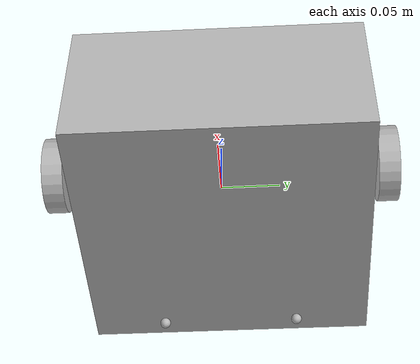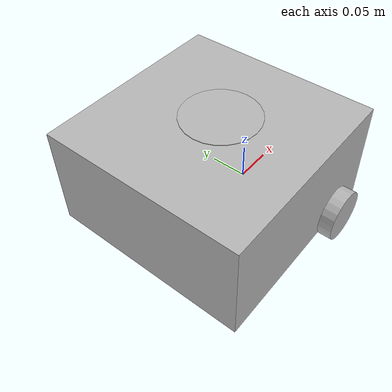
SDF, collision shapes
<?xml version="1.0" ?>
<sdf version="1.4">
  <model name="shelter">

    <link name="base">

      <inertial>
        <pose>0 0 0 0 0 0</pose>
        <inertia>
          <ixx>0.001</ixx>
          <ixy>0.000</ixy>
          <ixz>0.000</ixz>
          <iyy>0.001</iyy>
          <iyz>0.000</iyz>
          <izz>0.001</izz>
        </inertia>
        <mass>1.0</mass>
      </inertial>

      <collision name="base_collision">
        <pose>-0.064 0 0.0685 0 0 0</pose>
        <geometry>
          <box>
            <size>0.266 0.266 0.1385</size>
          </box>
        </geometry>
      </collision>

      <visual name="base_visual">
        <pose>-0.064 0 0.009 0 0 0</pose>
        <geometry>
          <mesh>
            <uri>model://shelter_common_meshes/shelter_base.dae</uri>
            <scale>0.001 0.001 0.001</scale>
          </mesh>
        </geometry>
      </visual>

      <collision name="right_caster_collision">
        <pose>-0.177 -0.064 -0.005 0 0 0</pose>
        <geometry>
          <sphere>
            <radius>0.005</radius>
          </sphere>
        </geometry>
        <surface>
          <friction>
            <ode>
              <mu>100000.0</mu>
              <mu2>100000.0</mu2>
              <fdir1>0 0 0</fdir1>
              <slip1>0</slip1>
              <slip2>0</slip2>
            </ode>
          </friction>
        </surface>
      </collision>

      <collision name="left_caster_collision">
        <pose>-0.177 0.064 -0.005 0 0 0</pose>
        <geometry>
          <sphere>
            <radius>0.005</radius>
          </sphere>
        </geometry>
        <surface>
          <friction>
            <ode>
              <mu>100000.0</mu>
              <mu2>100000.0</mu2>
              <fdir1>0 0 0</fdir1>
              <slip1>0</slip1>
              <slip2>0</slip2>
            </ode>
          </friction>
        </surface>
      </collision>
    </link>

    <link name="lidar">
      <inertial>
        <pose>-0.052 0 0.111 0 0 0</pose>
        <inertia>
          <ixx>0.001</ixx>
          <ixy>0.000</ixy>
          <ixz>0.000</ixz>
          <iyy>0.001</iyy>
          <iyz>0.000</iyz>
          <izz>0.001</izz>
        </inertia>
        <mass>0.125</mass>
      </inertial>

      <collision name="lidar_sensor_collision">
        <pose>-0.052 0 0.111 0 0 0</pose>
        <geometry>
          <cylinder>
            <radius>0.0508</radius>
            <length>0.055</length>
          </cylinder>
        </geometry>
      </collision>

      <visual name="lidar_sensor_visual">
        <pose>-0.064 0 0.122 0 0 0</pose>
        <geometry>
          <mesh>
            <uri>model://shelter_common_meshes/lds.dae</uri>
            <scale>0.001 0.001 0.001</scale>
          </mesh>
        </geometry>
      </visual>

      <sensor name="hls_lfcd_lds" type="ray">
        <always_on>1</always_on>
        <visualize>0</visualize>
        <pose>-0.064 0 0.121 0 0 0</pose>
        <update_rate>1800</update_rate>
        <ray>
          <scan>
            <horizontal>
              <samples>360</samples>
              <resolution>1.000000</resolution>
              <min_angle>0.000000</min_angle>
              <max_angle>6.280000</max_angle>
            </horizontal>
          </scan>
          <range>
            <min>0.120000</min>
            <max>3.5</max>
            <resolution>0.015000</resolution>
          </range>
          <noise>
            <type>gaussian</type>
            <mean>0.0</mean>
            <stddev>0.01</stddev>
          </noise>
        </ray>
      </sensor>
    </link>

    <link name="left_wheel">

      <inertial>
        <pose>0.0 0.144 0.023 -1.57 0 0</pose>
        <inertia>
          <ixx>0.001</ixx>
          <ixy>0.000</ixy>
          <ixz>0.000</ixz>
          <iyy>0.001</iyy>
          <iyz>0.000</iyz>
          <izz>0.001</izz>
        </inertia>
        <mass>0.1</mass>
      </inertial>

      <collision name="left_wheel_collision">
        <pose>0.0 0.144 0.023 -1.57 0 0</pose>
        <geometry>
          <cylinder>
            <radius>0.033</radius>
            <length>0.018</length>
          </cylinder>
        </geometry>
          <surface>
            <friction>
              <ode>
                <mu>100000.0</mu>
                <mu2>100000.0</mu2>
                <fdir1>0 0 0</fdir1>
                <slip1>0.0</slip1>
                <slip2>0.0</slip2>
              </ode>
          </friction>
        </surface>
      </collision>

      <visual name="left_wheel_visual">
        <pose>0.0 0.144 0.023 0 0 0</pose>
        <geometry>
          <mesh>
            <uri>model://shelter_common_meshes/tire.dae</uri>
            <scale>0.001 0.001 0.001</scale>
          </mesh>
        </geometry>
      </visual>
    </link>

    <link name="right_wheel">

      <inertial>
        <pose>0.0 -0.144 0.023 -1.57 0 0</pose>
        <inertia>
          <ixx>0.001</ixx>
          <ixy>0.000</ixy>
          <ixz>0.000</ixz>
          <iyy>0.001</iyy>
          <iyz>0.000</iyz>
          <izz>0.001</izz>
        </inertia>
        <mass>0.1</mass>
      </inertial>

      <collision name="right_wheel_collision">
        <pose>0.0 -0.144 0.023 -1.57 0 0</pose>
        <geometry>
          <cylinder>
            <radius>0.033</radius>
            <length>0.018</length>
          </cylinder>
        </geometry>
          <surface>
            <friction>
              <ode>
                <mu>100000.0</mu>
                <mu2>100000.0</mu2>
                <fdir1>0 0 0</fdir1>
                <slip1>0.0</slip1>
                <slip2>0.0</slip2>
              </ode>
          </friction>
        </surface>
      </collision>

      <visual name="right_wheel_visual">
        <pose>0.0 -0.144 0.023 0 0 0</pose>
        <geometry>
          <mesh>
            <uri>model://shelter_common_meshes/tire.dae</uri>
            <scale>0.001 0.001 0.001</scale>
          </mesh>
        </geometry>
      </visual>
    </link>

    <joint name="left_wheel_joint" type="revolute">
      <parent>base</parent>
      <child>left_wheel</child>
      <pose>0.0 0.144 0.023 -1.57 0 0</pose>
      <axis>
        <xyz>0 1 0</xyz>
      </axis>
    </joint>

    <joint name="right_wheel_joint" type="revolute">
      <parent>base</parent>
      <child>right_wheel</child>
      <pose>0.0 -0.144 0.023 -1.57 0 0</pose>
      <axis>
        <xyz>0 1 0</xyz>
      </axis>
    </joint>

    <joint name="lidar_joint" type="fixed">
      <parent>base</parent>
      <child>lidar</child>
      <pose>-0.064 0 0.121 0 0 0</pose>
      <axis>
        <xyz>0 0 1</xyz>
        <use_parent_model_frame>true</use_parent_model_frame>
      </axis>
    </joint>

    <joint name="image_joint" type="fixed">
      <parent>base</parent>
      <child>image</child>
      <pose>0.064 -0.065 0.094 0 0 0</pose>
      <axis>
        <xyz>0 0 1</xyz>
        <use_parent_model_frame>true</use_parent_model_frame>
      </axis>
    </joint>

  </model>
</sdf>
